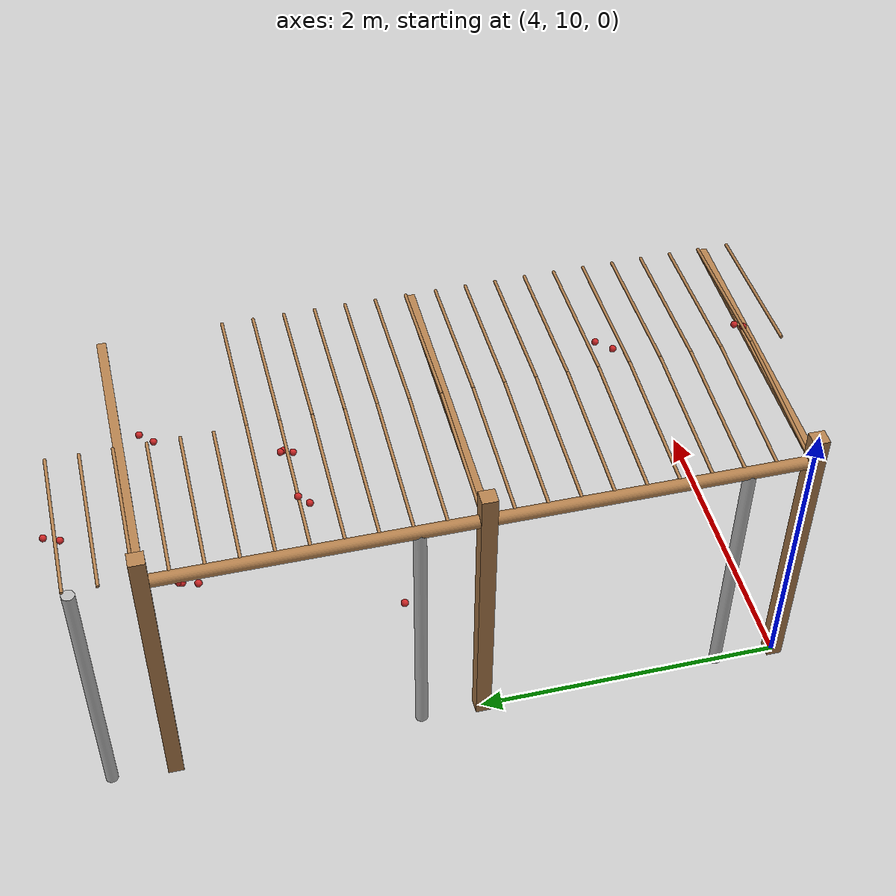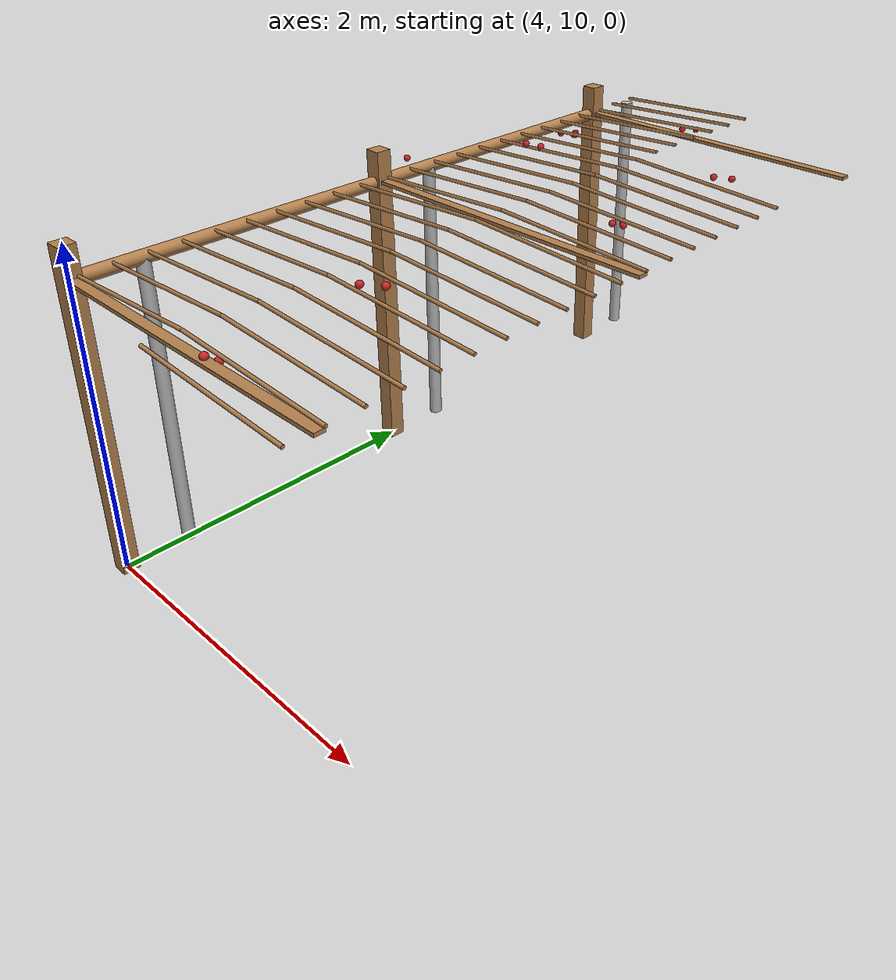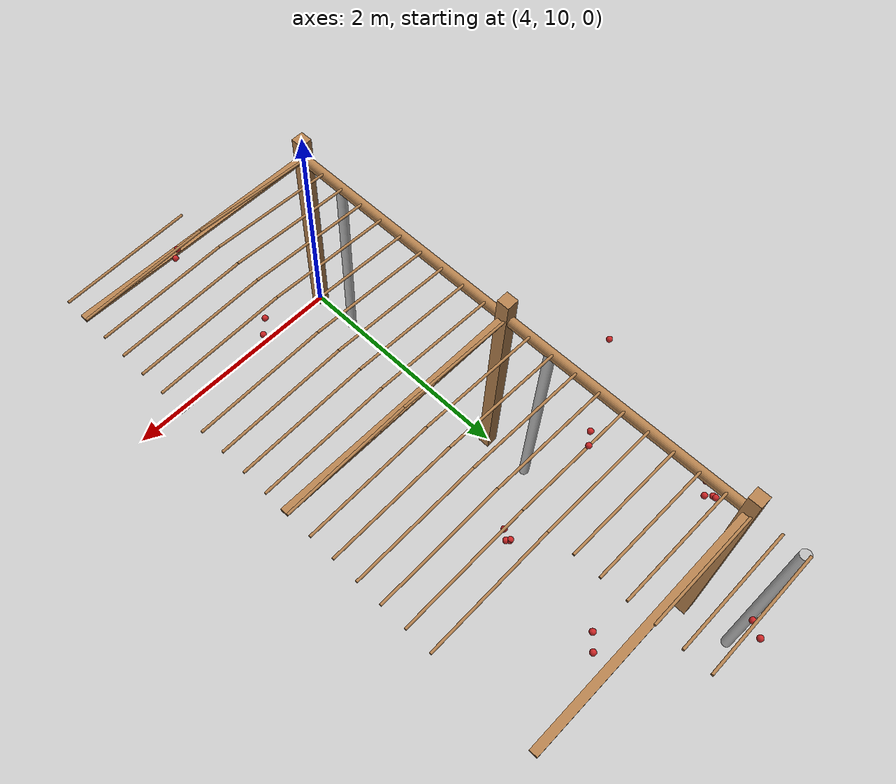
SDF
<sdf version="1.4">
 <model name="pergola">
  <include><name>post_27</name><pose>4.0 10.0 0 0 0 0</pose><uri>model://post</uri></include>
  <include><name>post_28</name><pose>4.0 12.0 0 0 0 0</pose><uri>model://post</uri></include>
  <include><name>post_29</name><pose>4.0 14.0 0 0 0 0</pose><uri>model://post</uri></include>
  <link name="beam_27">
   <pose>5.0 10.0 1.81 0 0 0</pose>
   <collision name="collision"><geometry><box><size>2.0 0.06 0.02</size></box></geometry></collision>
   <visual name="visual">
    <geometry><box><size>2.0 0.06 0.02</size></box></geometry>
    <material><script><name>Gazebo/Wood</name></script></material>
   </visual>
   <inertial>
    <mass>5</mass>
    <inertia>
     <ixx>0.0016666666666666668</ixx>
     <ixy>0.0</ixy>
     <ixz>0.0</ixz>
     <iyy>1.6681666666666664</iyy>
     <iyz>0.0</iyz>
     <izz>1.6668333333333332</izz>
    </inertia>
   </inertial>
  </link>
  <link name="beam_28">
   <pose>5.0 12.0 1.81 0 0 0</pose>
   <collision name="collision"><geometry><box><size>2.0 0.06 0.02</size></box></geometry></collision>
   <visual name="visual">
    <geometry><box><size>2.0 0.06 0.02</size></box></geometry>
    <material><script><name>Gazebo/Wood</name></script></material>
   </visual>
   <inertial>
    <mass>5</mass>
    <inertia>
     <ixx>0.0016666666666666668</ixx>
     <ixy>0.0</ixy>
     <ixz>0.0</ixz>
     <iyy>1.6681666666666664</iyy>
     <iyz>0.0</iyz>
     <izz>1.6668333333333332</izz>
    </inertia>
   </inertial>
  </link>
  <link name="beam_29">
   <pose>5.0 14.0 1.81 0 0 0</pose>
   <collision name="collision"><geometry><box><size>2.0 0.06 0.02</size></box></geometry></collision>
   <visual name="visual">
    <geometry><box><size>2.0 0.06 0.02</size></box></geometry>
    <material><script><name>Gazebo/Wood</name></script></material>
   </visual>
   <inertial>
    <mass>5</mass>
    <inertia>
     <ixx>0.0016666666666666668</ixx>
     <ixy>0.0</ixy>
     <ixz>0.0</ixz>
     <iyy>1.6681666666666664</iyy>
     <iyz>0.0</iyz>
     <izz>1.6668333333333332</izz>
    </inertia>
   </inertial>
  </link>
  <include><name>tree_25</name><pose>4.0 10.4 0 0 0 0</pose><uri>model://tree_trunk</uri></include>
  <include><name>tree_26</name><pose>4.0 12.4 0 0 0 0</pose><uri>model://tree_trunk</uri></include>
  <include><name>tree_27</name><pose>4.0 14.4 0 0 0 0</pose><uri>model://tree_trunk</uri></include>
  <link name="baseBranch_25">
   <pose>4.0 11.0 1.8 1.5707963267948966 0 0</pose>
   <collision name="collision">
    <geometry><cylinder><radius>0.04</radius><length>1.94</length></cylinder></geometry>
   </collision>
   <visual name="visual">
    <geometry><cylinder><radius>0.04</radius><length>1.94</length></cylinder></geometry>
    <material><script><name>Gazebo/WoodFloor</name></script></material>
   </visual>
   <inertial>
    <mass>10</mass>
    <inertia>
     <ixx>3.140333333333333</ixx>
     <ixy>0.0</ixy>
     <ixz>0.0</ixz>
     <iyy>3.140333333333333</iyy>
     <iyz>0.0</iyz>
     <izz>0.008</izz>
    </inertia>
   </inertial>
  </link>
  <link name="baseBranch_26">
   <pose>4.0 13.0 1.8 1.5707963267948966 0 0</pose>
   <collision name="collision">
    <geometry><cylinder><radius>0.04</radius><length>1.94</length></cylinder></geometry>
   </collision>
   <visual name="visual">
    <geometry><cylinder><radius>0.04</radius><length>1.94</length></cylinder></geometry>
    <material><script><name>Gazebo/WoodFloor</name></script></material>
   </visual>
   <inertial>
    <mass>10</mass>
    <inertia>
     <ixx>3.140333333333333</ixx>
     <ixy>0.0</ixy>
     <ixz>0.0</ixz>
     <iyy>3.140333333333333</iyy>
     <iyz>0.0</iyz>
     <izz>0.008</izz>
    </inertia>
   </inertial>
  </link>
  <link name="vine_499">
   <pose>5.5 9.83 1.85 0 -1.5208379310729538 0</pose>
   <collision name="collision">
    <geometry><cylinder><radius>0.01</radius><length>1.0012492197250393</length></cylinder></geometry>
   </collision>
   <visual name="visual">
    <geometry><cylinder><radius>0.01</radius><length>1.0012492197250393</length></cylinder></geometry>
    <material><script><name>Gazebo/WoodFloor</name></script></material>
   </visual>
   <inertial>
    <mass>5</mass>
    <inertia>
     <ixx>0.41783333333333345</ixx>
     <ixy>0.0</ixy>
     <ixz>0.0</ixz>
     <iyy>0.41783333333333345</iyy>
     <iyz>0.0</iyz>
     <izz>0.00025</izz>
    </inertia>
   </inertial>
  </link>
  <link name="vine_500">
   <pose>4.5 10.03 1.85 0 1.5208379310729538 0</pose>
   <collision name="collision">
    <geometry><cylinder><radius>0.01</radius><length>1.0012492197250393</length></cylinder></geometry>
   </collision>
   <visual name="visual">
    <geometry><cylinder><radius>0.01</radius><length>1.0012492197250393</length></cylinder></geometry>
    <material><script><name>Gazebo/WoodFloor</name></script></material>
   </visual>
   <inertial>
    <mass>5</mass>
    <inertia>
     <ixx>0.41783333333333345</ixx>
     <ixy>0.0</ixy>
     <ixz>0.0</ixz>
     <iyy>0.41783333333333345</iyy>
     <iyz>0.0</iyz>
     <izz>0.00025</izz>
    </inertia>
   </inertial>
  </link>
  <link name="vine_501">
   <pose>5.5 10.03 1.85 0 -1.5208379310729538 0</pose>
   <collision name="collision">
    <geometry><cylinder><radius>0.01</radius><length>1.0012492197250393</length></cylinder></geometry>
   </collision>
   <visual name="visual">
    <geometry><cylinder><radius>0.01</radius><length>1.0012492197250393</length></cylinder></geometry>
    <material><script><name>Gazebo/WoodFloor</name></script></material>
   </visual>
   <inertial>
    <mass>5</mass>
    <inertia>
     <ixx>0.41783333333333345</ixx>
     <ixy>0.0</ixy>
     <ixz>0.0</ixz>
     <iyy>0.41783333333333345</iyy>
     <iyz>0.0</iyz>
     <izz>0.00025</izz>
    </inertia>
   </inertial>
  </link>
  <link name="vine_502">
   <pose>4.5 10.23 1.85 0 1.5208379310729538 0</pose>
   <collision name="collision">
    <geometry><cylinder><radius>0.01</radius><length>1.0012492197250393</length></cylinder></geometry>
   </collision>
   <visual name="visual">
    <geometry><cylinder><radius>0.01</radius><length>1.0012492197250393</length></cylinder></geometry>
    <material><script><name>Gazebo/WoodFloor</name></script></material>
   </visual>
   <inertial>
    <mass>5</mass>
    <inertia>
     <ixx>0.41783333333333345</ixx>
     <ixy>0.0</ixy>
     <ixz>0.0</ixz>
     <iyy>0.41783333333333345</iyy>
     <iyz>0.0</iyz>
     <izz>0.00025</izz>
    </inertia>
   </inertial>
  </link>
  <link name="vine_503">
   <pose>5.5 10.23 1.85 0 -1.5208379310729538 0</pose>
   <collision name="collision">
    <geometry><cylinder><radius>0.01</radius><length>1.0012492197250393</length></cylinder></geometry>
   </collision>
   <visual name="visual">
    <geometry><cylinder><radius>0.01</radius><length>1.0012492197250393</length></cylinder></geometry>
    <material><script><name>Gazebo/WoodFloor</name></script></material>
   </visual>
   <inertial>
    <mass>5</mass>
    <inertia>
     <ixx>0.41783333333333345</ixx>
     <ixy>0.0</ixy>
     <ixz>0.0</ixz>
     <iyy>0.41783333333333345</iyy>
     <iyz>0.0</iyz>
     <izz>0.00025</izz>
    </inertia>
   </inertial>
  </link>
  <link name="vine_504">
   <pose>4.5 10.43 1.85 0 1.5208379310729538 0</pose>
   <collision name="collision">
    <geometry><cylinder><radius>0.01</radius><length>1.0012492197250393</length></cylinder></geometry>
   </collision>
   <visual name="visual">
    <geometry><cylinder><radius>0.01</radius><length>1.0012492197250393</length></cylinder></geometry>
    <material><script><name>Gazebo/WoodFloor</name></script></material>
   </visual>
   <inertial>
    <mass>5</mass>
    <inertia>
     <ixx>0.41783333333333345</ixx>
     <ixy>0.0</ixy>
     <ixz>0.0</ixz>
     <iyy>0.41783333333333345</iyy>
     <iyz>0.0</iyz>
     <izz>0.00025</izz>
    </inertia>
   </inertial>
  </link>
  <link name="vine_505">
   <pose>5.5 10.43 1.85 0 -1.5208379310729538 0</pose>
   <collision name="collision">
    <geometry><cylinder><radius>0.01</radius><length>1.0012492197250393</length></cylinder></geometry>
   </collision>
   <visual name="visual">
    <geometry><cylinder><radius>0.01</radius><length>1.0012492197250393</length></cylinder></geometry>
    <material><script><name>Gazebo/WoodFloor</name></script></material>
   </visual>
   <inertial>
    <mass>5</mass>
    <inertia>
     <ixx>0.41783333333333345</ixx>
     <ixy>0.0</ixy>
     <ixz>0.0</ixz>
     <iyy>0.41783333333333345</iyy>
     <iyz>0.0</iyz>
     <izz>0.00025</izz>
    </inertia>
   </inertial>
  </link>
  <link name="vine_506">
   <pose>4.5 10.63 1.85 0 1.5208379310729538 0</pose>
   <collision name="collision">
    <geometry><cylinder><radius>0.01</radius><length>1.0012492197250393</length></cylinder></geometry>
   </collision>
   <visual name="visual">
    <geometry><cylinder><radius>0.01</radius><length>1.0012492197250393</length></cylinder></geometry>
    <material><script><name>Gazebo/WoodFloor</name></script></material>
   </visual>
   <inertial>
    <mass>5</mass>
    <inertia>
     <ixx>0.41783333333333345</ixx>
     <ixy>0.0</ixy>
     <ixz>0.0</ixz>
     <iyy>0.41783333333333345</iyy>
     <iyz>0.0</iyz>
     <izz>0.00025</izz>
    </inertia>
   </inertial>
  </link>
  <link name="vine_507">
   <pose>5.5 10.63 1.85 0 -1.5208379310729538 0</pose>
   <collision name="collision">
    <geometry><cylinder><radius>0.01</radius><length>1.0012492197250393</length></cylinder></geometry>
   </collision>
   <visual name="visual">
    <geometry><cylinder><radius>0.01</radius><length>1.0012492197250393</length></cylinder></geometry>
    <material><script><name>Gazebo/WoodFloor</name></script></material>
   </visual>
   <inertial>
    <mass>5</mass>
    <inertia>
     <ixx>0.41783333333333345</ixx>
     <ixy>0.0</ixy>
     <ixz>0.0</ixz>
     <iyy>0.41783333333333345</iyy>
     <iyz>0.0</iyz>
     <izz>0.00025</izz>
    </inertia>
   </inertial>
  </link>
  <link name="vine_508">
   <pose>4.5 10.83 1.85 0 1.5208379310729538 0</pose>
   <collision name="collision">
    <geometry><cylinder><radius>0.01</radius><length>1.0012492197250393</length></cylinder></geometry>
   </collision>
   <visual name="visual">
    <geometry><cylinder><radius>0.01</radius><length>1.0012492197250393</length></cylinder></geometry>
    <material><script><name>Gazebo/WoodFloor</name></script></material>
   </visual>
   <inertial>
    <mass>5</mass>
    <inertia>
     <ixx>0.41783333333333345</ixx>
     <ixy>0.0</ixy>
     <ixz>0.0</ixz>
     <iyy>0.41783333333333345</iyy>
     <iyz>0.0</iyz>
     <izz>0.00025</izz>
    </inertia>
   </inertial>
  </link>
  <link name="vine_509">
   <pose>5.5 10.83 1.85 0 -1.5208379310729538 0</pose>
   <collision name="collision">
    <geometry><cylinder><radius>0.01</radius><length>1.0012492197250393</length></cylinder></geometry>
   </collision>
   <visual name="visual">
    <geometry><cylinder><radius>0.01</radius><length>1.0012492197250393</length></cylinder></geometry>
    <material><script><name>Gazebo/WoodFloor</name></script></material>
   </visual>
   <inertial>
    <mass>5</mass>
    <inertia>
     <ixx>0.41783333333333345</ixx>
     <ixy>0.0</ixy>
     <ixz>0.0</ixz>
     <iyy>0.41783333333333345</iyy>
     <iyz>0.0</iyz>
     <izz>0.00025</izz>
    </inertia>
   </inertial>
  </link>
  <link name="vine_510">
   <pose>4.5 11.03 1.85 0 1.5208379310729538 0</pose>
   <collision name="collision">
    <geometry><cylinder><radius>0.01</radius><length>1.0012492197250393</length></cylinder></geometry>
   </collision>
   <visual name="visual">
    <geometry><cylinder><radius>0.01</radius><length>1.0012492197250393</length></cylinder></geometry>
    <material><script><name>Gazebo/WoodFloor</name></script></material>
   </visual>
   <inertial>
    <mass>5</mass>
    <inertia>
     <ixx>0.41783333333333345</ixx>
     <ixy>0.0</ixy>
     <ixz>0.0</ixz>
     <iyy>0.41783333333333345</iyy>
     <iyz>0.0</iyz>
     <izz>0.00025</izz>
    </inertia>
   </inertial>
  </link>
  <link name="vine_511">
   <pose>5.5 11.03 1.85 0 -1.5208379310729538 0</pose>
   <collision name="collision">
    <geometry><cylinder><radius>0.01</radius><length>1.0012492197250393</length></cylinder></geometry>
   </collision>
   <visual name="visual">
    <geometry><cylinder><radius>0.01</radius><length>1.0012492197250393</length></cylinder></geometry>
    <material><script><name>Gazebo/WoodFloor</name></script></material>
   </visual>
   <inertial>
    <mass>5</mass>
    <inertia>
     <ixx>0.41783333333333345</ixx>
     <ixy>0.0</ixy>
     <ixz>0.0</ixz>
     <iyy>0.41783333333333345</iyy>
     <iyz>0.0</iyz>
     <izz>0.00025</izz>
    </inertia>
   </inertial>
  </link>
  <link name="vine_512">
   <pose>4.5 11.23 1.85 0 1.5208379310729538 0</pose>
   <collision name="collision">
    <geometry><cylinder><radius>0.01</radius><length>1.0012492197250393</length></cylinder></geometry>
   </collision>
   <visual name="visual">
    <geometry><cylinder><radius>0.01</radius><length>1.0012492197250393</length></cylinder></geometry>
    <material><script><name>Gazebo/WoodFloor</name></script></material>
   </visual>
   <inertial>
    <mass>5</mass>
    <inertia>
     <ixx>0.41783333333333345</ixx>
     <ixy>0.0</ixy>
     <ixz>0.0</ixz>
     <iyy>0.41783333333333345</iyy>
     <iyz>0.0</iyz>
     <izz>0.00025</izz>
    </inertia>
   </inertial>
  </link>
  <link name="vine_513">
   <pose>5.5 11.23 1.85 0 -1.5208379310729538 0</pose>
   <collision name="collision">
    <geometry><cylinder><radius>0.01</radius><length>1.0012492197250393</length></cylinder></geometry>
   </collision>
   <visual name="visual">
    <geometry><cylinder><radius>0.01</radius><length>1.0012492197250393</length></cylinder></geometry>
    <material><script><name>Gazebo/WoodFloor</name></script></material>
   </visual>
   <inertial>
    <mass>5</mass>
    <inertia>
     <ixx>0.41783333333333345</ixx>
     <ixy>0.0</ixy>
     <ixz>0.0</ixz>
     <iyy>0.41783333333333345</iyy>
     <iyz>0.0</iyz>
     <izz>0.00025</izz>
    </inertia>
   </inertial>
  </link>
  <link name="vine_514">
   <pose>4.5 11.43 1.85 0 1.5208379310729538 0</pose>
   <collision name="collision">
    <geometry><cylinder><radius>0.01</radius><length>1.0012492197250393</length></cylinder></geometry>
   </collision>
   <visual name="visual">
    <geometry><cylinder><radius>0.01</radius><length>1.0012492197250393</length></cylinder></geometry>
    <material><script><name>Gazebo/WoodFloor</name></script></material>
   </visual>
   <inertial>
    <mass>5</mass>
    <inertia>
     <ixx>0.41783333333333345</ixx>
     <ixy>0.0</ixy>
     <ixz>0.0</ixz>
     <iyy>0.41783333333333345</iyy>
     <iyz>0.0</iyz>
     <izz>0.00025</izz>
    </inertia>
   </inertial>
  </link>
  <link name="vine_515">
   <pose>5.5 11.43 1.85 0 -1.5208379310729538 0</pose>
   <collision name="collision">
    <geometry><cylinder><radius>0.01</radius><length>1.0012492197250393</length></cylinder></geometry>
   </collision>
   <visual name="visual">
    <geometry><cylinder><radius>0.01</radius><length>1.0012492197250393</length></cylinder></geometry>
    <material><script><name>Gazebo/WoodFloor</name></script></material>
   </visual>
   <inertial>
    <mass>5</mass>
    <inertia>
     <ixx>0.41783333333333345</ixx>
     <ixy>0.0</ixy>
     <ixz>0.0</ixz>
     <iyy>0.41783333333333345</iyy>
     <iyz>0.0</iyz>
     <izz>0.00025</izz>
    </inertia>
   </inertial>
  </link>
  <link name="vine_516">
   <pose>4.5 11.63 1.85 0 1.5208379310729538 0</pose>
   <collision name="collision">
    <geometry><cylinder><radius>0.01</radius><length>1.0012492197250393</length></cylinder></geometry>
   </collision>
   <visual name="visual">
    <geometry><cylinder><radius>0.01</radius><length>1.0012492197250393</length></cylinder></geometry>
    <material><script><name>Gazebo/WoodFloor</name></script></material>
   </visual>
   <inertial>
    <mass>5</mass>
    <inertia>
     <ixx>0.41783333333333345</ixx>
     <ixy>0.0</ixy>
     <ixz>0.0</ixz>
     <iyy>0.41783333333333345</iyy>
     <iyz>0.0</iyz>
     <izz>0.00025</izz>
    </inertia>
   </inertial>
  </link>
  <link name="vine_517">
   <pose>5.5 11.63 1.85 0 -1.5208379310729538 0</pose>
   <collision name="collision">
    <geometry><cylinder><radius>0.01</radius><length>1.0012492197250393</length></cylinder></geometry>
   </collision>
   <visual name="visual">
    <geometry><cylinder><radius>0.01</radius><length>1.0012492197250393</length></cylinder></geometry>
    <material><script><name>Gazebo/WoodFloor</name></script></material>
   </visual>
   <inertial>
    <mass>5</mass>
    <inertia>
     <ixx>0.41783333333333345</ixx>
     <ixy>0.0</ixy>
     <ixz>0.0</ixz>
     <iyy>0.41783333333333345</iyy>
     <iyz>0.0</iyz>
     <izz>0.00025</izz>
    </inertia>
   </inertial>
  </link>
  <link name="vine_518">
   <pose>4.5 11.83 1.85 0 1.5208379310729538 0</pose>
   <collision name="collision">
    <geometry><cylinder><radius>0.01</radius><length>1.0012492197250393</length></cylinder></geometry>
   </collision>
   <visual name="visual">
    <geometry><cylinder><radius>0.01</radius><length>1.0012492197250393</length></cylinder></geometry>
    <material><script><name>Gazebo/WoodFloor</name></script></material>
   </visual>
   <inertial>
    <mass>5</mass>
    <inertia>
     <ixx>0.41783333333333345</ixx>
     <ixy>0.0</ixy>
     <ixz>0.0</ixz>
     <iyy>0.41783333333333345</iyy>
     <iyz>0.0</iyz>
     <izz>0.00025</izz>
    </inertia>
   </inertial>
  </link>
  <link name="vine_519">
   <pose>5.5 11.83 1.85 0 -1.5208379310729538 0</pose>
   <collision name="collision">
    <geometry><cylinder><radius>0.01</radius><length>1.0012492197250393</length></cylinder></geometry>
   </collision>
   <visual name="visual">
    <geometry><cylinder><radius>0.01</radius><length>1.0012492197250393</length></cylinder></geometry>
    <material><script><name>Gazebo/WoodFloor</name></script></material>
   </visual>
   <inertial>
    <mass>5</mass>
    <inertia>
     <ixx>0.41783333333333345</ixx>
     <ixy>0.0</ixy>
     <ixz>0.0</ixz>
     <iyy>0.41783333333333345</iyy>
     <iyz>0.0</iyz>
     <izz>0.00025</izz>
    </inertia>
   </inertial>
  </link>
  <link name="vine_520">
   <pose>4.5 12.03 1.85 0 1.5208379310729538 0</pose>
   <collision name="collision">
    <geometry><cylinder><radius>0.01</radius><length>1.0012492197250393</length></cylinder></geometry>
   </collision>
   <visual name="visual">
    <geometry><cylinder><radius>0.01</radius><length>1.0012492197250393</length></cylinder></geometry>
    <material><script><name>Gazebo/WoodFloor</name></script></material>
   </visual>
   <inertial>
    <mass>5</mass>
    <inertia>
     <ixx>0.41783333333333345</ixx>
     <ixy>0.0</ixy>
     <ixz>0.0</ixz>
     <iyy>0.41783333333333345</iyy>
     <iyz>0.0</iyz>
     <izz>0.00025</izz>
    </inertia>
   </inertial>
  </link>
  <link name="vine_521">
   <pose>5.5 12.03 1.85 0 -1.5208379310729538 0</pose>
   <collision name="collision">
    <geometry><cylinder><radius>0.01</radius><length>1.0012492197250393</length></cylinder></geometry>
   </collision>
   <visual name="visual">
    <geometry><cylinder><radius>0.01</radius><length>1.0012492197250393</length></cylinder></geometry>
    <material><script><name>Gazebo/WoodFloor</name></script></material>
   </visual>
   <inertial>
    <mass>5</mass>
    <inertia>
     <ixx>0.41783333333333345</ixx>
     <ixy>0.0</ixy>
     <ixz>0.0</ixz>
     <iyy>0.41783333333333345</iyy>
     <iyz>0.0</iyz>
     <izz>0.00025</izz>
    </inertia>
   </inertial>
  </link>
  <link name="vine_522">
   <pose>4.5 12.23 1.85 0 1.5208379310729538 0</pose>
   <collision name="collision">
    <geometry><cylinder><radius>0.01</radius><length>1.0012492197250393</length></cylinder></geometry>
   </collision>
   <visual name="visual">
    <geometry><cylinder><radius>0.01</radius><length>1.0012492197250393</length></cylinder></geometry>
    <material><script><name>Gazebo/WoodFloor</name></script></material>
   </visual>
   <inertial>
    <mass>5</mass>
    <inertia>
     <ixx>0.41783333333333345</ixx>
     <ixy>0.0</ixy>
     <ixz>0.0</ixz>
     <iyy>0.41783333333333345</iyy>
     <iyz>0.0</iyz>
     <izz>0.00025</izz>
    </inertia>
   </inertial>
  </link>
  <link name="vine_523">
   <pose>5.5 12.23 1.85 0 -1.5208379310729538 0</pose>
   <collision name="collision">
    <geometry><cylinder><radius>0.01</radius><length>1.0012492197250393</length></cylinder></geometry>
   </collision>
   <visual name="visual">
    <geometry><cylinder><radius>0.01</radius><length>1.0012492197250393</length></cylinder></geometry>
    <material><script><name>Gazebo/WoodFloor</name></script></material>
   </visual>
   <inertial>
    <mass>5</mass>
    <inertia>
     <ixx>0.41783333333333345</ixx>
     <ixy>0.0</ixy>
     <ixz>0.0</ixz>
     <iyy>0.41783333333333345</iyy>
     <iyz>0.0</iyz>
     <izz>0.00025</izz>
    </inertia>
   </inertial>
  </link>
  <link name="vine_524">
   <pose>4.5 12.43 1.85 0 1.5208379310729538 0</pose>
   <collision name="collision">
    <geometry><cylinder><radius>0.01</radius><length>1.0012492197250393</length></cylinder></geometry>
   </collision>
   <visual name="visual">
    <geometry><cylinder><radius>0.01</radius><length>1.0012492197250393</length></cylinder></geometry>
    <material><script><name>Gazebo/WoodFloor</name></script></material>
   </visual>
   <inertial>
    <mass>5</mass>
    <inertia>
     <ixx>0.41783333333333345</ixx>
     <ixy>0.0</ixy>
     <ixz>0.0</ixz>
     <iyy>0.41783333333333345</iyy>
     <iyz>0.0</iyz>
     <izz>0.00025</izz>
    </inertia>
   </inertial>
  </link>
  <link name="vine_525">
   <pose>5.5 12.43 1.85 0 -1.5208379310729538 0</pose>
   <collision name="collision">
    <geometry><cylinder><radius>0.01</radius><length>1.0012492197250393</length></cylinder></geometry>
   </collision>
   <visual name="visual">
    <geometry><cylinder><radius>0.01</radius><length>1.0012492197250393</length></cylinder></geometry>
    <material><script><name>Gazebo/WoodFloor</name></script></material>
   </visual>
   <inertial>
    <mass>5</mass>
    <inertia>
     <ixx>0.41783333333333345</ixx>
     <ixy>0.0</ixy>
     <ixz>0.0</ixz>
     <iyy>0.41783333333333345</iyy>
     <iyz>0.0</iyz>
     <izz>0.00025</izz>
    </inertia>
   </inertial>
  </link>
  <link name="vine_526">
   <pose>4.5 12.63 1.85 0 1.5208379310729538 0</pose>
   <collision name="collision">
    <geometry><cylinder><radius>0.01</radius><length>1.0012492197250393</length></cylinder></geometry>
   </collision>
   <visual name="visual">
    <geometry><cylinder><radius>0.01</radius><length>1.0012492197250393</length></cylinder></geometry>
    <material><script><name>Gazebo/WoodFloor</name></script></material>
   </visual>
   <inertial>
    <mass>5</mass>
    <inertia>
     <ixx>0.41783333333333345</ixx>
     <ixy>0.0</ixy>
     <ixz>0.0</ixz>
     <iyy>0.41783333333333345</iyy>
     <iyz>0.0</iyz>
     <izz>0.00025</izz>
    </inertia>
   </inertial>
  </link>
  <link name="vine_527">
   <pose>5.5 12.63 1.85 0 -1.5208379310729538 0</pose>
   <collision name="collision">
    <geometry><cylinder><radius>0.01</radius><length>1.0012492197250393</length></cylinder></geometry>
   </collision>
   <visual name="visual">
    <geometry><cylinder><radius>0.01</radius><length>1.0012492197250393</length></cylinder></geometry>
    <material><script><name>Gazebo/WoodFloor</name></script></material>
   </visual>
   <inertial>
    <mass>5</mass>
    <inertia>
     <ixx>0.41783333333333345</ixx>
     <ixy>0.0</ixy>
     <ixz>0.0</ixz>
     <iyy>0.41783333333333345</iyy>
     <iyz>0.0</iyz>
     <izz>0.00025</izz>
    </inertia>
   </inertial>
  </link>
  <link name="vine_528">
   <pose>4.5 12.83 1.85 0 1.5208379310729538 0</pose>
   <collision name="collision">
    <geometry><cylinder><radius>0.01</radius><length>1.0012492197250393</length></cylinder></geometry>
   </collision>
   <visual name="visual">
    <geometry><cylinder><radius>0.01</radius><length>1.0012492197250393</length></cylinder></geometry>
    <material><script><name>Gazebo/WoodFloor</name></script></material>
   </visual>
   <inertial>
    <mass>5</mass>
    <inertia>
     <ixx>0.41783333333333345</ixx>
     <ixy>0.0</ixy>
     <ixz>0.0</ixz>
     <iyy>0.41783333333333345</iyy>
     <iyz>0.0</iyz>
     <izz>0.00025</izz>
    </inertia>
   </inertial>
  </link>
  <link name="vine_529">
   <pose>5.5 12.83 1.85 0 -1.5208379310729538 0</pose>
   <collision name="collision">
    <geometry><cylinder><radius>0.01</radius><length>1.0012492197250393</length></cylinder></geometry>
   </collision>
   <visual name="visual">
    <geometry><cylinder><radius>0.01</radius><length>1.0012492197250393</length></cylinder></geometry>
    <material><script><name>Gazebo/WoodFloor</name></script></material>
   </visual>
   <inertial>
    <mass>5</mass>
    <inertia>
     <ixx>0.41783333333333345</ixx>
     <ixy>0.0</ixy>
     <ixz>0.0</ixz>
     <iyy>0.41783333333333345</iyy>
     <iyz>0.0</iyz>
     <izz>0.00025</izz>
    </inertia>
   </inertial>
  </link>
  <link name="vine_530">
   <pose>4.5 13.03 1.85 0 1.5208379310729538 0</pose>
   <collision name="collision">
    <geometry><cylinder><radius>0.01</radius><length>1.0012492197250393</length></cylinder></geometry>
   </collision>
   <visual name="visual">
    <geometry><cylinder><radius>0.01</radius><length>1.0012492197250393</length></cylinder></geometry>
    <material><script><name>Gazebo/WoodFloor</name></script></material>
   </visual>
   <inertial>
    <mass>5</mass>
    <inertia>
     <ixx>0.41783333333333345</ixx>
     <ixy>0.0</ixy>
     <ixz>0.0</ixz>
     <iyy>0.41783333333333345</iyy>
     <iyz>0.0</iyz>
     <izz>0.00025</izz>
    </inertia>
   </inertial>
  </link>
  <link name="vine_531">
   <pose>5.5 13.03 1.85 0 -1.5208379310729538 0</pose>
   <collision name="collision">
    <geometry><cylinder><radius>0.01</radius><length>1.0012492197250393</length></cylinder></geometry>
   </collision>
   <visual name="visual">
    <geometry><cylinder><radius>0.01</radius><length>1.0012492197250393</length></cylinder></geometry>
    <material><script><name>Gazebo/WoodFloor</name></script></material>
   </visual>
   <inertial>
    <mass>5</mass>
    <inertia>
     <ixx>0.41783333333333345</ixx>
     <ixy>0.0</ixy>
     <ixz>0.0</ixz>
     <iyy>0.41783333333333345</iyy>
     <iyz>0.0</iyz>
     <izz>0.00025</izz>
    </inertia>
   </inertial>
  </link>
  <link name="vine_532">
   <pose>4.5 13.23 1.85 0 1.5208379310729538 0</pose>
   <collision name="collision">
    <geometry><cylinder><radius>0.01</radius><length>1.0012492197250393</length></cylinder></geometry>
   </collision>
   <visual name="visual">
    <geometry><cylinder><radius>0.01</radius><length>1.0012492197250393</length></cylinder></geometry>
    <material><script><name>Gazebo/WoodFloor</name></script></material>
   </visual>
   <inertial>
    <mass>5</mass>
    <inertia>
     <ixx>0.41783333333333345</ixx>
     <ixy>0.0</ixy>
     <ixz>0.0</ixz>
     <iyy>0.41783333333333345</iyy>
     <iyz>0.0</iyz>
     <izz>0.00025</izz>
    </inertia>
   </inertial>
  </link>
  <link name="vine_533">
   <pose>5.5 13.23 1.85 0 -1.5208379310729538 0</pose>
   <collision name="collision">
    <geometry><cylinder><radius>0.01</radius><length>1.0012492197250393</length></cylinder></geometry>
   </collision>
   <visual name="visual">
    <geometry><cylinder><radius>0.01</radius><length>1.0012492197250393</length></cylinder></geometry>
    <material><script><name>Gazebo/WoodFloor</name></script></material>
   </visual>
   <inertial>
    <mass>5</mass>
    <inertia>
     <ixx>0.41783333333333345</ixx>
     <ixy>0.0</ixy>
     <ixz>0.0</ixz>
     <iyy>0.41783333333333345</iyy>
     <iyz>0.0</iyz>
     <izz>0.00025</izz>
    </inertia>
   </inertial>
  </link>
  <link name="vine_534">
   <pose>4.5 13.43 1.85 0 1.5208379310729538 0</pose>
   <collision name="collision">
    <geometry><cylinder><radius>0.01</radius><length>1.0012492197250393</length></cylinder></geometry>
   </collision>
   <visual name="visual">
    <geometry><cylinder><radius>0.01</radius><length>1.0012492197250393</length></cylinder></geometry>
    <material><script><name>Gazebo/WoodFloor</name></script></material>
   </visual>
   <inertial>
    <mass>5</mass>
    <inertia>
     <ixx>0.41783333333333345</ixx>
     <ixy>0.0</ixy>
     <ixz>0.0</ixz>
     <iyy>0.41783333333333345</iyy>
     <iyz>0.0</iyz>
     <izz>0.00025</izz>
    </inertia>
   </inertial>
  </link>
  <link name="vine_536">
   <pose>4.5 13.63 1.85 0 1.5208379310729538 0</pose>
   <collision name="collision">
    <geometry><cylinder><radius>0.01</radius><length>1.0012492197250393</length></cylinder></geometry>
   </collision>
   <visual name="visual">
    <geometry><cylinder><radius>0.01</radius><length>1.0012492197250393</length></cylinder></geometry>
    <material><script><name>Gazebo/WoodFloor</name></script></material>
   </visual>
   <inertial>
    <mass>5</mass>
    <inertia>
     <ixx>0.41783333333333345</ixx>
     <ixy>0.0</ixy>
     <ixz>0.0</ixz>
     <iyy>0.41783333333333345</iyy>
     <iyz>0.0</iyz>
     <izz>0.00025</izz>
    </inertia>
   </inertial>
  </link>
  <link name="vine_538">
   <pose>4.5 13.83 1.85 0 1.5208379310729538 0</pose>
   <collision name="collision">
    <geometry><cylinder><radius>0.01</radius><length>1.0012492197250393</length></cylinder></geometry>
   </collision>
   <visual name="visual">
    <geometry><cylinder><radius>0.01</radius><length>1.0012492197250393</length></cylinder></geometry>
    <material><script><name>Gazebo/WoodFloor</name></script></material>
   </visual>
   <inertial>
    <mass>5</mass>
    <inertia>
     <ixx>0.41783333333333345</ixx>
     <ixy>0.0</ixy>
     <ixz>0.0</ixz>
     <iyy>0.41783333333333345</iyy>
     <iyz>0.0</iyz>
     <izz>0.00025</izz>
    </inertia>
   </inertial>
  </link>
  <link name="vine_540">
   <pose>4.5 14.03 1.85 0 1.5208379310729538 0</pose>
   <collision name="collision">
    <geometry><cylinder><radius>0.01</radius><length>1.0012492197250393</length></cylinder></geometry>
   </collision>
   <visual name="visual">
    <geometry><cylinder><radius>0.01</radius><length>1.0012492197250393</length></cylinder></geometry>
    <material><script><name>Gazebo/WoodFloor</name></script></material>
   </visual>
   <inertial>
    <mass>5</mass>
    <inertia>
     <ixx>0.41783333333333345</ixx>
     <ixy>0.0</ixy>
     <ixz>0.0</ixz>
     <iyy>0.41783333333333345</iyy>
     <iyz>0.0</iyz>
     <izz>0.00025</izz>
    </inertia>
   </inertial>
  </link>
  <link name="vine_542">
   <pose>4.5 14.23 1.85 0 1.5208379310729538 0</pose>
   <collision name="collision">
    <geometry><cylinder><radius>0.01</radius><length>1.0012492197250393</length></cylinder></geometry>
   </collision>
   <visual name="visual">
    <geometry><cylinder><radius>0.01</radius><length>1.0012492197250393</length></cylinder></geometry>
    <material><script><name>Gazebo/WoodFloor</name></script></material>
   </visual>
   <inertial>
    <mass>5</mass>
    <inertia>
     <ixx>0.41783333333333345</ixx>
     <ixy>0.0</ixy>
     <ixz>0.0</ixz>
     <iyy>0.41783333333333345</iyy>
     <iyz>0.0</iyz>
     <izz>0.00025</izz>
    </inertia>
   </inertial>
  </link>
  <link name="vine_544">
   <pose>4.5 14.43 1.85 0 1.5208379310729538 0</pose>
   <collision name="collision">
    <geometry><cylinder><radius>0.01</radius><length>1.0012492197250393</length></cylinder></geometry>
   </collision>
   <visual name="visual">
    <geometry><cylinder><radius>0.01</radius><length>1.0012492197250393</length></cylinder></geometry>
    <material><script><name>Gazebo/WoodFloor</name></script></material>
   </visual>
   <inertial>
    <mass>5</mass>
    <inertia>
     <ixx>0.41783333333333345</ixx>
     <ixy>0.0</ixy>
     <ixz>0.0</ixz>
     <iyy>0.41783333333333345</iyy>
     <iyz>0.0</iyz>
     <izz>0.00025</izz>
    </inertia>
   </inertial>
  </link>
  <link name="fruit_80">
   <pose>4.506131298759834 14.412016738292238 1.7017358263199296 0 0 0</pose>
   <collision name="fruit_collision_80"><geometry><sphere><radius>0.022</radius></sphere></geometry></collision>
   <visual name="visual">
    <geometry><sphere><radius>0.022</radius></sphere></geometry>
    <material><script><name>Gazebo/Red</name></script></material>
   </visual>
   <inertial>
    <mass>0.05</mass>
    <inertia>
     <ixx>9.679999999999999e-06</ixx>
     <ixy>0.0</ixy>
     <ixz>0.0</ixz>
     <iyy>9.679999999999999e-06</iyy>
     <iyz>0.0</iyz>
     <izz>9.679999999999999e-06</izz>
    </inertia>
   </inertial>
   <sensor name="fruit_contact_80" type="contact">
    <contact><collision>fruit_collision_80</collision></contact>
   </sensor>
  </link>
  <link name="fruit_81">
   <pose>4.299631263545424 12.977665326599288 1.875414452214775 0 0 0</pose>
   <collision name="fruit_collision_81"><geometry><sphere><radius>0.022</radius></sphere></geometry></collision>
   <visual name="visual">
    <geometry><sphere><radius>0.022</radius></sphere></geometry>
    <material><script><name>Gazebo/Red</name></script></material>
   </visual>
   <inertial>
    <mass>0.05</mass>
    <inertia>
     <ixx>9.679999999999999e-06</ixx>
     <ixy>0.0</ixy>
     <ixz>0.0</ixz>
     <iyy>9.679999999999999e-06</iyy>
     <iyz>0.0</iyz>
     <izz>9.679999999999999e-06</izz>
    </inertia>
   </inertial>
   <sensor name="fruit_contact_81" type="contact">
    <contact><collision>fruit_collision_81</collision></contact>
   </sensor>
  </link>
  <link name="fruit_147">
   <pose>5.197529768136614 10.00704647526574 1.828949997996874 0 0 0</pose>
   <collision name="fruit_collision_147"><geometry><sphere><radius>0.022</radius></sphere></geometry></collision>
   <visual name="visual">
    <geometry><sphere><radius>0.022</radius></sphere></geometry>
    <material><script><name>Gazebo/Red</name></script></material>
   </visual>
   <inertial>
    <mass>0.05</mass>
    <inertia>
     <ixx>9.679999999999999e-06</ixx>
     <ixy>0.0</ixy>
     <ixz>0.0</ixz>
     <iyy>9.679999999999999e-06</iyy>
     <iyz>0.0</iyz>
     <izz>9.679999999999999e-06</izz>
    </inertia>
   </inertial>
   <sensor name="fruit_contact_147" type="contact">
    <contact><collision>fruit_collision_147</collision></contact>
   </sensor>
  </link>
  <link name="fruit_206">
   <pose>5.206465140087897 13.786815754205248 1.6710685660381113 0 0 0</pose>
   <collision name="fruit_collision_206"><geometry><sphere><radius>0.022</radius></sphere></geometry></collision>
   <visual name="visual">
    <geometry><sphere><radius>0.022</radius></sphere></geometry>
    <material><script><name>Gazebo/Red</name></script></material>
   </visual>
   <inertial>
    <mass>0.05</mass>
    <inertia>
     <ixx>9.679999999999999e-06</ixx>
     <ixy>0.0</ixy>
     <ixz>0.0</ixz>
     <iyy>9.679999999999999e-06</iyy>
     <iyz>0.0</iyz>
     <izz>9.679999999999999e-06</izz>
    </inertia>
   </inertial>
   <sensor name="fruit_contact_206" type="contact">
    <contact><collision>fruit_collision_206</collision></contact>
   </sensor>
  </link>
  <link name="fruit_221">
   <pose>3.984906566362232 13.681492895327478 1.7210106055561452 0 0 0</pose>
   <collision name="fruit_collision_221"><geometry><sphere><radius>0.022</radius></sphere></geometry></collision>
   <visual name="visual">
    <geometry><sphere><radius>0.022</radius></sphere></geometry>
    <material><script><name>Gazebo/Red</name></script></material>
   </visual>
   <inertial>
    <mass>0.05</mass>
    <inertia>
     <ixx>9.679999999999999e-06</ixx>
     <ixy>0.0</ixy>
     <ixz>0.0</ixz>
     <iyy>9.679999999999999e-06</iyy>
     <iyz>0.0</iyz>
     <izz>9.679999999999999e-06</izz>
    </inertia>
   </inertial>
   <sensor name="fruit_contact_221" type="contact">
    <contact><collision>fruit_collision_221</collision></contact>
   </sensor>
  </link>
  <link name="fruit_318">
   <pose>5.160254072861681 10.889070845225158 1.859009924751654 0 0 0</pose>
   <collision name="fruit_collision_318"><geometry><sphere><radius>0.022</radius></sphere></geometry></collision>
   <visual name="visual">
    <geometry><sphere><radius>0.022</radius></sphere></geometry>
    <material><script><name>Gazebo/Red</name></script></material>
   </visual>
   <inertial>
    <mass>0.05</mass>
    <inertia>
     <ixx>9.679999999999999e-06</ixx>
     <ixy>0.0</ixy>
     <ixz>0.0</ixz>
     <iyy>9.679999999999999e-06</iyy>
     <iyz>0.0</iyz>
     <izz>9.679999999999999e-06</izz>
    </inertia>
   </inertial>
   <sensor name="fruit_contact_318" type="contact">
    <contact><collision>fruit_collision_318</collision></contact>
   </sensor>
  </link>
  <link name="fruit_321">
   <pose>5.044575973639106 12.960207782663897 1.5427076644563615 0 0 0</pose>
   <collision name="fruit_collision_321"><geometry><sphere><radius>0.022</radius></sphere></geometry></collision>
   <visual name="visual">
    <geometry><sphere><radius>0.022</radius></sphere></geometry>
    <material><script><name>Gazebo/Red</name></script></material>
   </visual>
   <inertial>
    <mass>0.05</mass>
    <inertia>
     <ixx>9.679999999999999e-06</ixx>
     <ixy>0.0</ixy>
     <ixz>0.0</ixz>
     <iyy>9.679999999999999e-06</iyy>
     <iyz>0.0</iyz>
     <izz>9.679999999999999e-06</izz>
    </inertia>
   </inertial>
   <sensor name="fruit_contact_321" type="contact">
    <contact><collision>fruit_collision_321</collision></contact>
   </sensor>
  </link>
  <link name="fruit_416">
   <pose>5.088722194003352 13.015548657560439 1.5269567742309746 0 0 0</pose>
   <collision name="fruit_collision_416"><geometry><sphere><radius>0.022</radius></sphere></geometry></collision>
   <visual name="visual">
    <geometry><sphere><radius>0.022</radius></sphere></geometry>
    <material><script><name>Gazebo/Red</name></script></material>
   </visual>
   <inertial>
    <mass>0.05</mass>
    <inertia>
     <ixx>9.679999999999999e-06</ixx>
     <ixy>0.0</ixy>
     <ixz>0.0</ixz>
     <iyy>9.679999999999999e-06</iyy>
     <iyz>0.0</iyz>
     <izz>9.679999999999999e-06</izz>
    </inertia>
   </inertial>
   <sensor name="fruit_contact_416" type="contact">
    <contact><collision>fruit_collision_416</collision></contact>
   </sensor>
  </link>
  <link name="fruit_427">
   <pose>3.5856938411627617 12.583050286754448 1.7080821852986128 0 0 0</pose>
   <collision name="fruit_collision_427"><geometry><sphere><radius>0.022</radius></sphere></geometry></collision>
   <visual name="visual">
    <geometry><sphere><radius>0.022</radius></sphere></geometry>
    <material><script><name>Gazebo/Red</name></script></material>
   </visual>
   <inertial>
    <mass>0.05</mass>
    <inertia>
     <ixx>9.679999999999999e-06</ixx>
     <ixy>0.0</ixy>
     <ixz>0.0</ixz>
     <iyy>9.679999999999999e-06</iyy>
     <iyz>0.0</iyz>
     <izz>9.679999999999999e-06</izz>
    </inertia>
   </inertial>
   <sensor name="fruit_contact_427" type="contact">
    <contact><collision>fruit_collision_427</collision></contact>
   </sensor>
  </link>
  <link name="fruit_440">
   <pose>5.253318270623334 10.974483446918466 1.8522628706217572 0 0 0</pose>
   <collision name="fruit_collision_440"><geometry><sphere><radius>0.022</radius></sphere></geometry></collision>
   <visual name="visual">
    <geometry><sphere><radius>0.022</radius></sphere></geometry>
    <material><script><name>Gazebo/Red</name></script></material>
   </visual>
   <inertial>
    <mass>0.05</mass>
    <inertia>
     <ixx>9.679999999999999e-06</ixx>
     <ixy>0.0</ixy>
     <ixz>0.0</ixz>
     <iyy>9.679999999999999e-06</iyy>
     <iyz>0.0</iyz>
     <izz>9.679999999999999e-06</izz>
    </inertia>
   </inertial>
   <sensor name="fruit_contact_440" type="contact">
    <contact><collision>fruit_collision_440</collision></contact>
   </sensor>
  </link>
  <link name="fruit_478">
   <pose>4.028502490172871 13.789245592801228 1.7090911925410663 0 0 0</pose>
   <collision name="fruit_collision_478"><geometry><sphere><radius>0.022</radius></sphere></geometry></collision>
   <visual name="visual">
    <geometry><sphere><radius>0.022</radius></sphere></geometry>
    <material><script><name>Gazebo/Red</name></script></material>
   </visual>
   <inertial>
    <mass>0.05</mass>
    <inertia>
     <ixx>9.679999999999999e-06</ixx>
     <ixy>0.0</ixy>
     <ixz>0.0</ixz>
     <iyy>9.679999999999999e-06</iyy>
     <iyz>0.0</iyz>
     <izz>9.679999999999999e-06</izz>
    </inertia>
   </inertial>
   <sensor name="fruit_contact_478" type="contact">
    <contact><collision>fruit_collision_478</collision></contact>
   </sensor>
  </link>
  <link name="fruit_480">
   <pose>5.294945689770789 13.86571764258331 1.6600907767827877 0 0 0</pose>
   <collision name="fruit_collision_480"><geometry><sphere><radius>0.022</radius></sphere></geometry></collision>
   <visual name="visual">
    <geometry><sphere><radius>0.022</radius></sphere></geometry>
    <material><script><name>Gazebo/Red</name></script></material>
   </visual>
   <inertial>
    <mass>0.05</mass>
    <inertia>
     <ixx>9.679999999999999e-06</ixx>
     <ixy>0.0</ixy>
     <ixz>0.0</ixz>
     <iyy>9.679999999999999e-06</iyy>
     <iyz>0.0</iyz>
     <izz>9.679999999999999e-06</izz>
    </inertia>
   </inertial>
   <sensor name="fruit_contact_480" type="contact">
    <contact><collision>fruit_collision_480</collision></contact>
   </sensor>
  </link>
  <link name="fruit_481">
   <pose>5.249011532844782 10.04537996548033 1.8099612150336228 0 0 0</pose>
   <collision name="fruit_collision_481"><geometry><sphere><radius>0.022</radius></sphere></geometry></collision>
   <visual name="visual">
    <geometry><sphere><radius>0.022</radius></sphere></geometry>
    <material><script><name>Gazebo/Red</name></script></material>
   </visual>
   <inertial>
    <mass>0.05</mass>
    <inertia>
     <ixx>9.679999999999999e-06</ixx>
     <ixy>0.0</ixy>
     <ixz>0.0</ixz>
     <iyy>9.679999999999999e-06</iyy>
     <iyz>0.0</iyz>
     <izz>9.679999999999999e-06</izz>
    </inertia>
   </inertial>
   <sensor name="fruit_contact_481" type="contact">
    <contact><collision>fruit_collision_481</collision></contact>
   </sensor>
  </link>
  <link name="fruit_553">
   <pose>4.026894611324271 13.770890921148542 1.700732258493032 0 0 0</pose>
   <collision name="fruit_collision_553"><geometry><sphere><radius>0.022</radius></sphere></geometry></collision>
   <visual name="visual">
    <geometry><sphere><radius>0.022</radius></sphere></geometry>
    <material><script><name>Gazebo/Red</name></script></material>
   </visual>
   <inertial>
    <mass>0.05</mass>
    <inertia>
     <ixx>9.679999999999999e-06</ixx>
     <ixy>0.0</ixy>
     <ixz>0.0</ixz>
     <iyy>9.679999999999999e-06</iyy>
     <iyz>0.0</iyz>
     <izz>9.679999999999999e-06</izz>
    </inertia>
   </inertial>
   <sensor name="fruit_contact_553" type="contact">
    <contact><collision>fruit_collision_553</collision></contact>
   </sensor>
  </link>
  <link name="fruit_557">
   <pose>5.069122106647706 13.03528457573354 1.5381034095854509 0 0 0</pose>
   <collision name="fruit_collision_557"><geometry><sphere><radius>0.022</radius></sphere></geometry></collision>
   <visual name="visual">
    <geometry><sphere><radius>0.022</radius></sphere></geometry>
    <material><script><name>Gazebo/Red</name></script></material>
   </visual>
   <inertial>
    <mass>0.05</mass>
    <inertia>
     <ixx>9.679999999999999e-06</ixx>
     <ixy>0.0</ixy>
     <ixz>0.0</ixz>
     <iyy>9.679999999999999e-06</iyy>
     <iyz>0.0</iyz>
     <izz>9.679999999999999e-06</izz>
    </inertia>
   </inertial>
   <sensor name="fruit_contact_557" type="contact">
    <contact><collision>fruit_collision_557</collision></contact>
   </sensor>
  </link>
  <link name="fruit_570">
   <pose>4.557480399148631 14.506133174063434 1.689083633049463 0 0 0</pose>
   <collision name="fruit_collision_570"><geometry><sphere><radius>0.022</radius></sphere></geometry></collision>
   <visual name="visual">
    <geometry><sphere><radius>0.022</radius></sphere></geometry>
    <material><script><name>Gazebo/Red</name></script></material>
   </visual>
   <inertial>
    <mass>0.05</mass>
    <inertia>
     <ixx>9.679999999999999e-06</ixx>
     <ixy>0.0</ixy>
     <ixz>0.0</ixz>
     <iyy>9.679999999999999e-06</iyy>
     <iyz>0.0</iyz>
     <izz>9.679999999999999e-06</izz>
    </inertia>
   </inertial>
   <sensor name="fruit_contact_570" type="contact">
    <contact><collision>fruit_collision_570</collision></contact>
   </sensor>
  </link>
  <link name="fruit_695">
   <pose>4.069569955201026 13.732424168128693 1.7173427437130018 0 0 0</pose>
   <collision name="fruit_collision_695"><geometry><sphere><radius>0.022</radius></sphere></geometry></collision>
   <visual name="visual">
    <geometry><sphere><radius>0.022</radius></sphere></geometry>
    <material><script><name>Gazebo/Red</name></script></material>
   </visual>
   <inertial>
    <mass>0.05</mass>
    <inertia>
     <ixx>9.679999999999999e-06</ixx>
     <ixy>0.0</ixy>
     <ixz>0.0</ixz>
     <iyy>9.679999999999999e-06</iyy>
     <iyz>0.0</iyz>
     <izz>9.679999999999999e-06</izz>
    </inertia>
   </inertial>
   <sensor name="fruit_contact_695" type="contact">
    <contact><collision>fruit_collision_695</collision></contact>
   </sensor>
  </link>
  <link name="fruit_700">
   <pose>5.073790779559121 13.035052727040696 1.5329360919381785 0 0 0</pose>
   <collision name="fruit_collision_700"><geometry><sphere><radius>0.022</radius></sphere></geometry></collision>
   <visual name="visual">
    <geometry><sphere><radius>0.022</radius></sphere></geometry>
    <material><script><name>Gazebo/Red</name></script></material>
   </visual>
   <inertial>
    <mass>0.05</mass>
    <inertia>
     <ixx>9.679999999999999e-06</ixx>
     <ixy>0.0</ixy>
     <ixz>0.0</ixz>
     <iyy>9.679999999999999e-06</iyy>
     <iyz>0.0</iyz>
     <izz>9.679999999999999e-06</izz>
    </inertia>
   </inertial>
   <sensor name="fruit_contact_700" type="contact">
    <contact><collision>fruit_collision_700</collision></contact>
   </sensor>
  </link>
  <link name="fruit_896">
   <pose>4.378157271288215 13.031829996943372 1.8618889150203297 0 0 0</pose>
   <collision name="fruit_collision_896"><geometry><sphere><radius>0.022</radius></sphere></geometry></collision>
   <visual name="visual">
    <geometry><sphere><radius>0.022</radius></sphere></geometry>
    <material><script><name>Gazebo/Red</name></script></material>
   </visual>
   <inertial>
    <mass>0.05</mass>
    <inertia>
     <ixx>9.679999999999999e-06</ixx>
     <ixy>0.0</ixy>
     <ixz>0.0</ixz>
     <iyy>9.679999999999999e-06</iyy>
     <iyz>0.0</iyz>
     <izz>9.679999999999999e-06</izz>
    </inertia>
   </inertial>
   <sensor name="fruit_contact_896" type="contact">
    <contact><collision>fruit_collision_896</collision></contact>
   </sensor>
  </link>
 </model>
</sdf>
